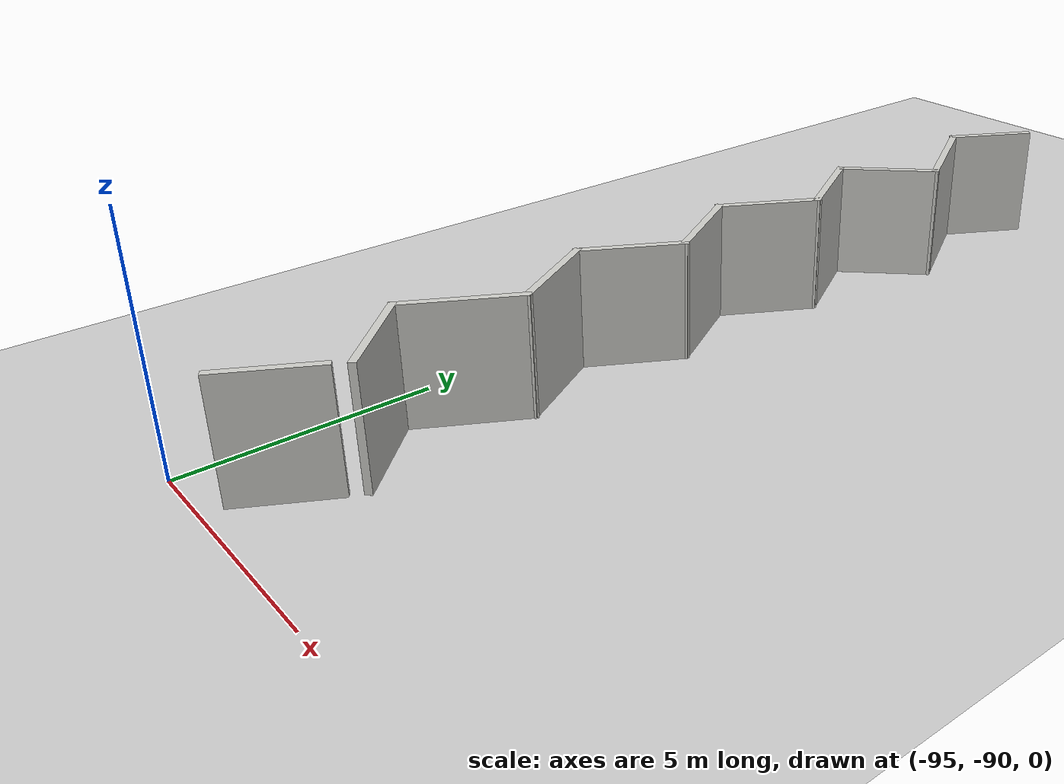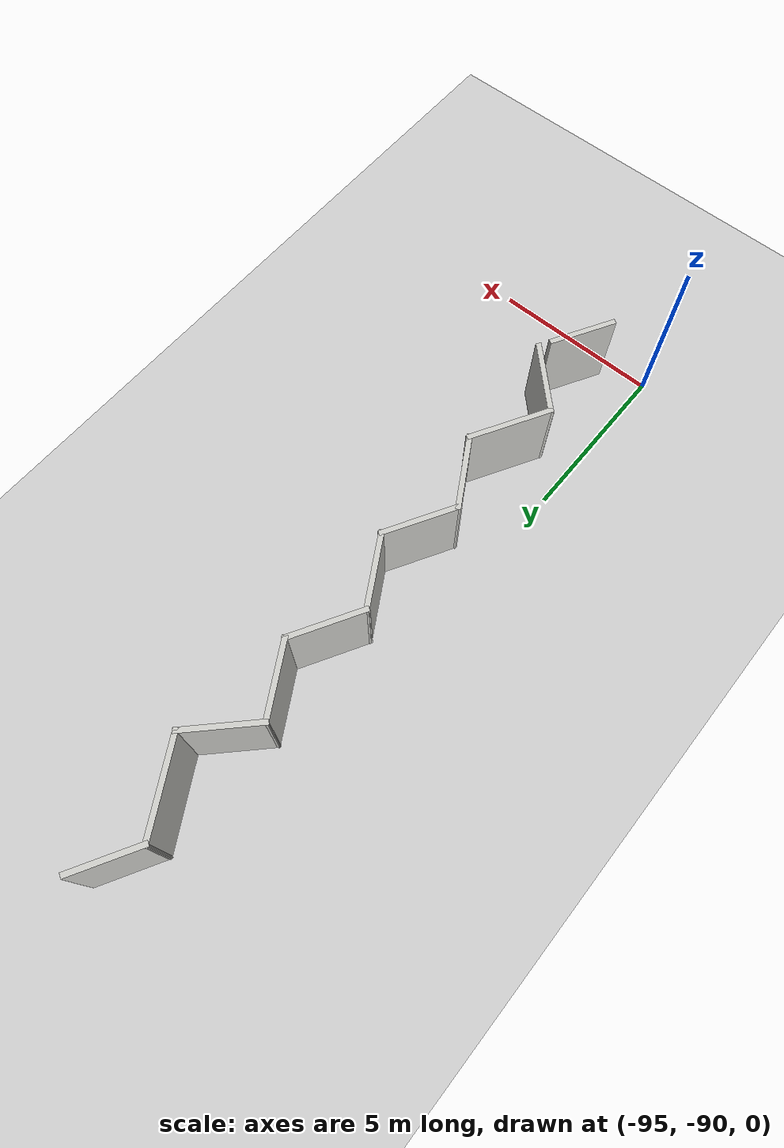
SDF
<sdf version="1.6">
 <world name="default">
  <model name="ground_plane">
   <pose>50 50 0 0 -0 0</pose>
   <static>1</static>
   <link name="link">
    <collision name="collision">
     <geometry><plane><normal>0 0 1</normal><size>100 100</size></plane></geometry>
     <surface><friction><ode><mu>100</mu><mu2>50</mu2></ode></friction></surface>
    </collision>
    <visual name="visual">
     <cast_shadows>0</cast_shadows>
     <geometry><plane><normal>0 0 1</normal><size>100 100</size></plane></geometry>
     <material>
      <script><uri>file://media/materials/scripts/gazebo.material</uri><name>Gazebo/Grey</name></script>
     </material>
    </visual>
   </link>
  </model>
  <model name="maze_1">
   <pose>-54.4916 -79.5001 0 0 -0 0</pose>
   <link name="Wall_50">
    <collision name="Wall_50_Collision">
     <geometry><box><size>2 0.15 2.5</size></box></geometry>
     <pose>0 0 1.25 0 -0 0</pose>
    </collision>
    <visual name="Wall_50_Visual">
     <pose>0 0 1.25 0 -0 0</pose>
     <geometry><box><size>2 0.15 2.5</size></box></geometry>
     <material>
      <script><uri>file://media/materials/scripts/gazebo.material</uri><name>Gazebo/CeilingTiled</name></script>
      <ambient>1 1 1 1</ambient>
     </material>
     <meta><layer>0</layer></meta>
    </visual>
    <pose>-38.6831 -9.20886 0 0 -0 1.0472</pose>
   </link>
   <link name="Wall_61">
    <collision name="Wall_61_Collision">
     <geometry><box><size>2.25 0.15 2.5</size></box></geometry>
     <pose>0 0 1.25 0 -0 0</pose>
    </collision>
    <visual name="Wall_61_Visual">
     <pose>0 0 1.25 0 -0 0</pose>
     <geometry><box><size>2.25 0.15 2.5</size></box></geometry>
     <material>
      <script><uri>file://media/materials/scripts/gazebo.material</uri><name>Gazebo/CeilingTiled</name></script>
      <ambient>1 1 1 1</ambient>
     </material>
     <meta><layer>0</layer></meta>
    </visual>
    <pose>-38.7606 -7.30854 0 0 -0 2.35619</pose>
   </link>
   <link name="Wall_62">
    <collision name="Wall_62_Collision">
     <geometry><box><size>2.5 0.15 2.5</size></box></geometry>
     <pose>0 0 1.25 0 -0 0</pose>
    </collision>
    <visual name="Wall_62_Visual">
     <pose>0 0 1.25 0 -0 0</pose>
     <geometry><box><size>2.5 0.15 2.5</size></box></geometry>
     <material>
      <script><uri>file://media/materials/scripts/gazebo.material</uri><name>Gazebo/CeilingTiled</name></script>
      <ambient>1 1 1 1</ambient>
     </material>
     <meta><layer>0</layer></meta>
    </visual>
    <pose>-38.9155 -5.5485 0 0 -0 1.0472</pose>
   </link>
   <link name="Wall_63">
    <collision name="Wall_63_Collision">
     <geometry><box><size>2.25 0.15 2.5</size></box></geometry>
     <pose>0 0 1.25 0 -0 0</pose>
    </collision>
    <visual name="Wall_63_Visual">
     <pose>0 0 1.25 0 -0 0</pose>
     <geometry><box><size>2.25 0.15 2.5</size></box></geometry>
     <material>
      <script><uri>file://media/materials/scripts/gazebo.material</uri><name>Gazebo/CeilingTiled</name></script>
      <ambient>1 1 1 1</ambient>
     </material>
     <meta><layer>0</layer></meta>
    </visual>
    <pose>-38.853 -3.6216 0 0 -0 2.0944</pose>
   </link>
   <link name="Wall_64">
    <collision name="Wall_64_Collision">
     <geometry><box><size>2.25 0.15 2.5</size></box></geometry>
     <pose>0 0 1.25 0 -0 0</pose>
    </collision>
    <visual name="Wall_64_Visual">
     <pose>0 0 1.25 0 -0 0</pose>
     <geometry><box><size>2.25 0.15 2.5</size></box></geometry>
     <material>
      <script><uri>file://media/materials/scripts/gazebo.material</uri><name>Gazebo/CeilingTiled</name></script>
      <ambient>1 1 1 1</ambient>
     </material>
     <meta><layer>0</layer></meta>
    </visual>
    <pose>-38.853 -1.80294 0 0 -0 1.0472</pose>
   </link>
   <link name="Wall_71">
    <collision name="Wall_71_Collision">
     <geometry><box><size>2.25 0.15 2.5</size></box></geometry>
     <pose>0 0 1.25 0 -0 0</pose>
    </collision>
    <visual name="Wall_71_Visual">
     <pose>0 0 1.25 0 -0 0</pose>
     <geometry><box><size>2.25 0.15 2.5</size></box></geometry>
     <material>
      <script><uri>file://media/materials/scripts/gazebo.material</uri><name>Gazebo/CeilingTiled</name></script>
      <ambient>1 1 1 1</ambient>
     </material>
     <meta><layer>0</layer></meta>
    </visual>
    <pose>-38.853 0.015712 0 0 -0 2.0944</pose>
   </link>
   <link name="Wall_72">
    <collision name="Wall_72_Collision">
     <geometry><box><size>2.25 0.15 2.5</size></box></geometry>
     <pose>0 0 1.25 0 -0 0</pose>
    </collision>
    <visual name="Wall_72_Visual">
     <pose>0 0 1.25 0 -0 0</pose>
     <geometry><box><size>2.25 0.15 2.5</size></box></geometry>
     <material>
      <script><uri>file://media/materials/scripts/gazebo.material</uri><name>Gazebo/CeilingTiled</name></script>
      <ambient>1 1 1 1</ambient>
     </material>
     <meta><layer>0</layer></meta>
    </visual>
    <pose>-38.853 1.83437 0 0 -0 1.0472</pose>
   </link>
   <link name="Wall_73">
    <collision name="Wall_73_Collision">
     <geometry><box><size>2.25 0.15 2.5</size></box></geometry>
     <pose>0 0 1.25 0 -0 0</pose>
    </collision>
    <visual name="Wall_73_Visual">
     <pose>0 0 1.25 0 -0 0</pose>
     <geometry><box><size>2.25 0.15 2.5</size></box></geometry>
     <material>
      <script><uri>file://media/materials/scripts/gazebo.material</uri><name>Gazebo/CeilingTiled</name></script>
      <ambient>1 1 1 1</ambient>
     </material>
     <meta><layer>0</layer></meta>
    </visual>
    <pose>-38.853 3.65302 0 0 -0 2.0944</pose>
   </link>
   <link name="Wall_74">
    <collision name="Wall_74_Collision">
     <geometry><box><size>2.25 0.15 2.5</size></box></geometry>
     <pose>0 0 1.25 0 -0 0</pose>
    </collision>
    <visual name="Wall_74_Visual">
     <pose>0 0 1.25 0 -0 0</pose>
     <geometry><box><size>2.25 0.15 2.5</size></box></geometry>
     <material>
      <script><uri>file://media/materials/scripts/gazebo.material</uri><name>Gazebo/CeilingTiled</name></script>
      <ambient>1 1 1 1</ambient>
     </material>
     <meta><layer>0</layer></meta>
    </visual>
    <pose>-38.6356 5.30481 0 0 -0 0.785398</pose>
   </link>
   <link name="Wall_75">
    <collision name="Wall_75_Collision">
     <geometry><box><size>2.75 0.15 2.5</size></box></geometry>
     <pose>0 0 1.25 0 -0 0</pose>
    </collision>
    <visual name="Wall_75_Visual">
     <pose>0 0 1.25 0 -0 0</pose>
     <geometry><box><size>2.75 0.15 2.5</size></box></geometry>
     <material>
      <script><uri>file://media/materials/scripts/gazebo.material</uri><name>Gazebo/CeilingTiled</name></script>
      <ambient>1 1 1 1</ambient>
     </material>
     <meta><layer>0</layer></meta>
    </visual>
    <pose>-38.5431 7.1731 0 0 -0 2.0944</pose>
   </link>
   <link name="Wall_76">
    <collision name="Wall_76_Collision">
     <geometry><box><size>2 0.15 2.5</size></box></geometry>
     <pose>0 0 1.25 0 -0 0</pose>
    </collision>
    <visual name="Wall_76_Visual">
     <pose>0 0 1.25 0 -0 0</pose>
     <geometry><box><size>2 0.15 2.5</size></box></geometry>
     <material>
      <script><uri>file://media/materials/scripts/gazebo.material</uri><name>Gazebo/CeilingTiled</name></script>
      <ambient>1 1 1 1</ambient>
     </material>
     <meta><layer>0</layer></meta>
    </visual>
    <pose>-38.7306 9.10001 0 0 -0 1.0472</pose>
   </link>
   <static>1</static>
  </model>
 </world>
</sdf>
